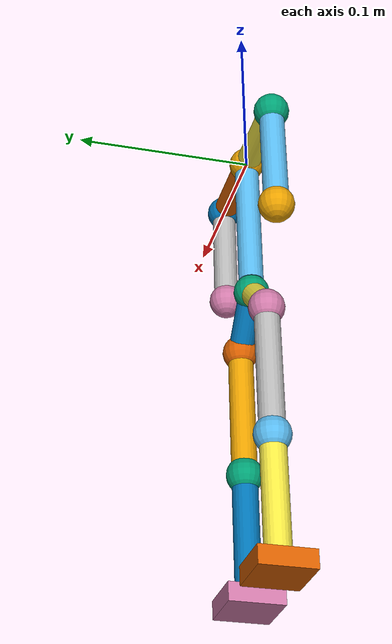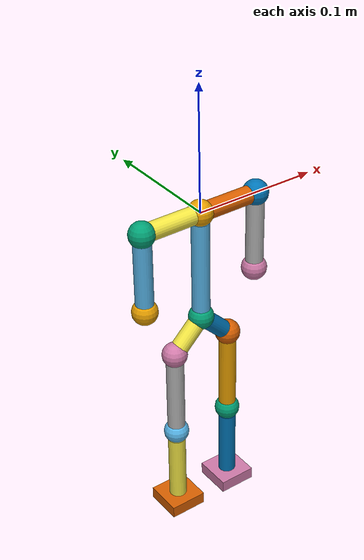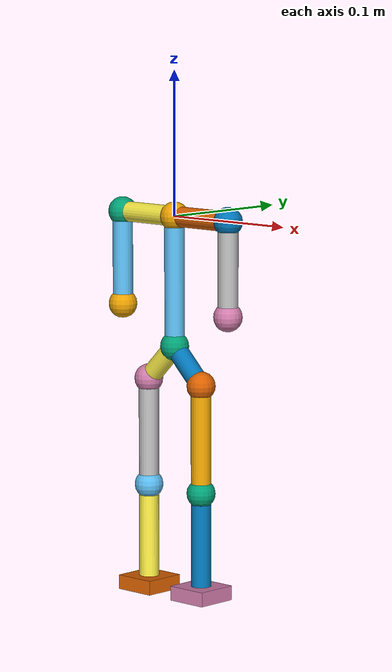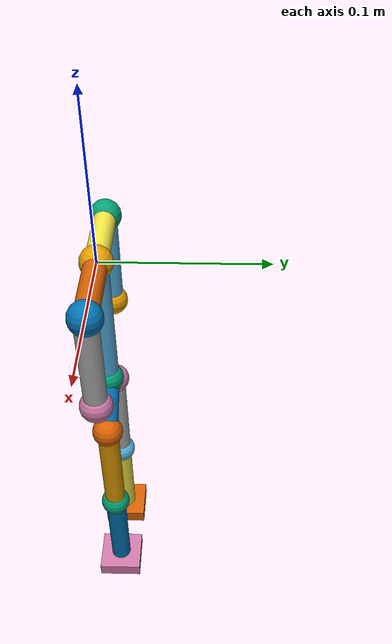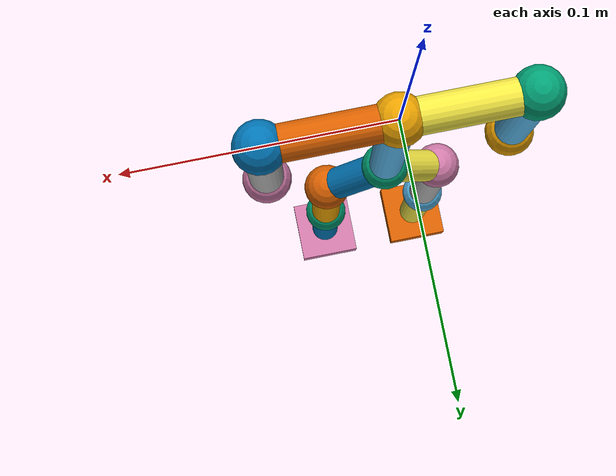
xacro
<?xml version="1.0"?>
<robot xmlns:xacro="http://www.ros.org/wiki/xacro" name="arm">

<xacro:macro name="jointy" params="name offset">
    <link name="${name}">
        <visual>
            <geometry>
                <sphere radius="0.01"/>
            </geometry>
            <origin xyz="${offset}"/>
        </visual>
        <collision>
            <geometry>
                <sphere radius="0.01"/>
            </geometry>
            <origin xyz="${offset}"/>
        </collision>
    </link>
</xacro:macro>

<xacro:macro name="limb" params="name length offset rpy">
    <link name="${name}">
        <visual>
            <geometry>
                <cylinder radius="0.0070" length="${length}"/>
            </geometry>
            <origin xyz="${offset}" rpy="${rpy}"/>
        </visual>
        <collision>
            <geometry>
                <cylinder radius="0.0070" length="${length}"/>
            </geometry>
            <origin xyz="${offset}" rpy="${rpy}"/>
        </collision>
    </link>

</xacro:macro>

<xacro:macro name="affix" params="name parent child">
    <joint name="${name}" type="fixed">
        <parent link="${parent}"/>
        <child link="${child}"/>
    </joint>
</xacro:macro>

<xacro:macro name="revolve" params="name parent child hi lo axis offset">
    <joint name="${name}" type="revolute">
        <parent link="${parent}"/>
        <child link="${child}"/>
        <limit lower="${lo}" upper="${hi}" effort="20.0" velocity="20.0"/>
        <origin xyz="${offset}"/>
        <axis xyz="${axis}"/>
    </joint>
</xacro:macro>

<link name="base_link">
    <visual>
        <geometry>
            <sphere radius="0.01"/>
        </geometry>
    </visual>
    <collision>
        <geometry>
            <sphere radius="0.01"/>
        </geometry>
    </collision>
</link>

<xacro:limb name="body" length=".075" offset="0 0 -.045" rpy="0 0 0"/>
<xacro:affix name="base_to_body" parent="base_link" child="body"/>

<xacro:jointy name="lshoulder" offset="-.05 0 0"/>
<xacro:limb name="ltrap" length=".05" offset="-.03 0 0" rpy="0 ${3.14/2} 0"/>
<xacro:affix name="base_to_ltrap" parent="base_link" child="ltrap"/>
<xacro:affix name="ltrap_to_lshoulder" parent="ltrap" child="lshoulder"/>

<xacro:jointy name="rshoulder" offset=".05 0 0"/>
<xacro:limb name="rtrap" length=".05" offset=".03 0 0" rpy="0 ${3.14/2} 0"/>
<xacro:affix name="base_to_rtrap" parent="base_link" child="rtrap"/>
<xacro:affix name="rtrap_to_rshoulder" parent="rtrap" child="rshoulder"/>

<xacro:jointy name="relbow" offset="0 0 -.065"/>
<xacro:limb name="rbicep" length=".065" offset="0 0 -.035" rpy="0 0 0"/>
<xacro:revolve name="r_shoulder_bsocket" parent="rshoulder"
        child="rbicep" lo="-1.2" hi="1.2" axis="1 0 0" offset=".05 0 0"/>
<xacro:affix name="rb_to_re" parent="rbicep" child="relbow"/>

<xacro:jointy name="lelbow" offset="0 0 -.065"/>
<xacro:limb name="lbicep" length=".065" offset="0 0 -.035" rpy="0 0 0"/>
<xacro:revolve name="l_shoulder_bsocket" parent="lshoulder"
        child="lbicep" lo="-1.2" hi="1.2" axis="1 0 0" offset="-.05 0 0"/>
<xacro:affix name="lb_to_le" parent="lbicep" child="lelbow"/>

<xacro:jointy name="pelvis" offset="0 0 0"/>
<xacro:revolve name="swivel_pelvis" parent="body"
        child="pelvis" lo="-1.2" hi="1.2" axis="0 0 1" offset="0 0 -.09"/>

<xacro:limb name="lglute" length=".025" offset="-.013 0 -.013" rpy="0 ${3.14/4} 0"/>
<xacro:affix name="lhipcon" parent='pelvis' child="lglute"/>

<xacro:limb name="rglute" length=".025" offset=".013 0 -.013" rpy="0 -${3.14/4} 0"/>
<xacro:affix name="rhipcon" parent='pelvis' child="rglute"/>

<xacro:jointy name="lhip" offset=".025 0 -.025"/>
<xacro:affix name="lg_to_lh" parent='lglute' child="lhip"/>

<xacro:jointy name="rhip" offset="-.025 0 -.025"/>
<xacro:affix name="rg_to_rh" parent='rglute' child="rhip"/>

<xacro:limb name="lthigh" length=".065" offset="0 0 -.0325" rpy="0 0 0"/>
<xacro:revolve name="lhip_bsocket" parent="lhip"
        child="lthigh" lo="-1.2" hi="1.2" axis="1 0 0" offset="-.025 0 -.03"/>

<xacro:limb name="rthigh" length=".065" offset="0 0 -.0325" rpy="0 0 0"/>
<xacro:revolve name="rhip_bsocket" parent="rhip"
        child="rthigh" lo="-1.2" hi="1.2" axis="1 0 0" offset=".025 0 -.03"/>

<xacro:jointy name="lknee" offset="0 0 -.07"/>
<xacro:affix name="lt_to_lk" parent='lthigh' child="lknee"/>

<xacro:jointy name="rknee" offset="0 0 -.07"/>
<xacro:affix name="rt_to_rk" parent='rthigh' child="rknee"/>

<xacro:limb name="lcalf" length=".065" offset="0 0 -.04" rpy="0 0 0"/>
<xacro:revolve name="lknee_socket" parent="lknee"
        child="lcalf" lo="-1.2" hi="0" axis="1 0 0" offset="0 0 -.07"/>

<xacro:limb name="rcalf" length=".065" offset="0 0 -.04" rpy="0 0 0"/>
<xacro:revolve name="rknee_socket" parent="rknee"
        child="rcalf" lo="-1.2" hi="0" axis="1 0 0" offset="0 0 -.07"/>

<link name="lfoot">
    <visual>
        <geometry>
            <box size="0.03 0.03 0.01"/>
        </geometry>
        <origin xyz="0 0 -.07"/>
    </visual>
    <collision>
        <geometry>
            <box size="0.05 0.05 0.01"/>
        </geometry>
        <origin xyz="0 0 -.07"/>
    </collision>
    <inertial>
        <origin xyz="0 0 0" rpy="0 0 0"/>
        <mass value="3.0"/>
        <inertia ixx="0.0" ixy="0.0" ixz="0.0" iyy="0.0" iyz="0.0" izz="0.0"/>
    </inertial>
</link>

<link name="rfoot">
    <visual>
        <geometry>
            <box size="0.03 0.03 0.01"/>
        </geometry>
        <origin xyz="0 0 -.07"/>
    </visual>
    <collision>
        <geometry>
            <box size="0.05 0.05 0.01"/>
        </geometry>
        <origin xyz="0 0 -.07"/>
    </collision>
    <inertial>
        <origin xyz="0 0 0" rpy="0 0 0"/>
        <mass value="3.0"/>
        <inertia ixx="0.0" ixy="0.0" ixz="0.0" iyy="0.0" iyz="0.0" izz="0.0"/>
    </inertial>
</link>

<xacro:affix name="lankle" parent="lcalf" child="lfoot"/>
<xacro:affix name="rankle" parent="rcalf" child="rfoot"/>

</robot>
